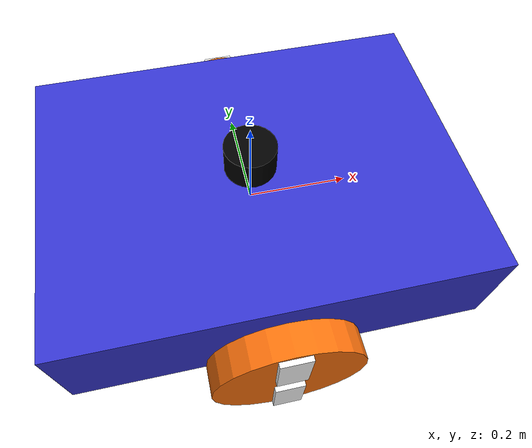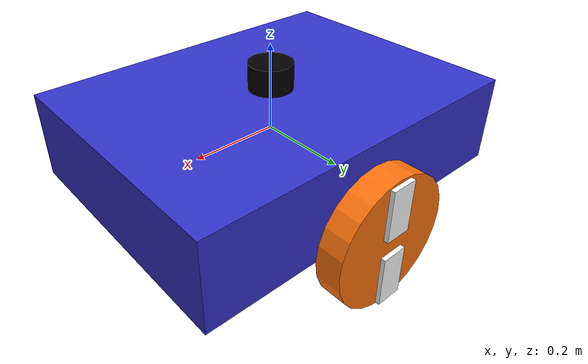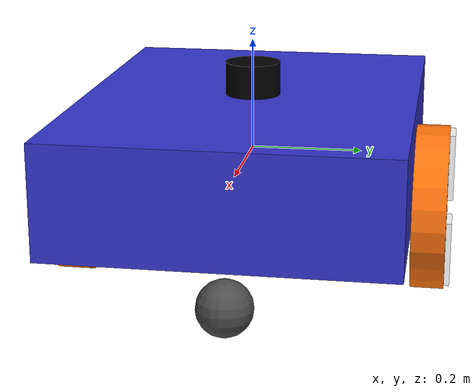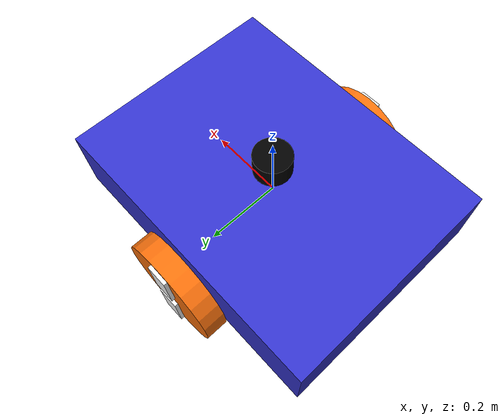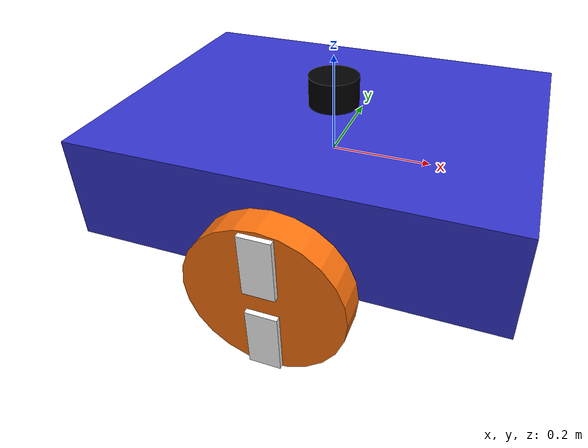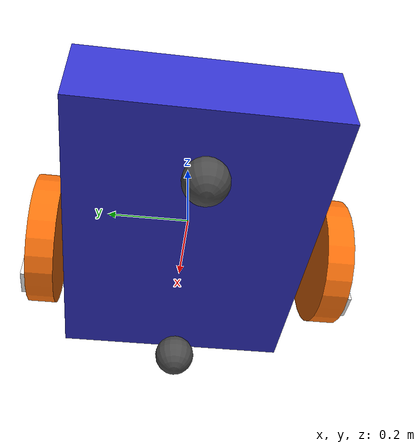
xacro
<?xml version="1.0"?>
<!-- xacro 命名空间声明，必须 -->
<robot xmlns:xacro="http://www.ros.org/wiki/xacro" name="my_robot">

  <!-- ========== ① 参数区：所有尺寸集中这里，改一处全局生效 ========== -->
  <xacro:property name="wheel_radius"     value="0.15"/>   <!-- 轮半径 m -->
  <xacro:property name="wheel_separation" value="0.70"/>   <!-- 左右轮距 m（DiffDrive 也要用） -->
  <xacro:property name="wheel_width"      value="0.06"/>
  <xacro:property name="chassis_len"      value="0.80"/>
  <xacro:property name="chassis_wid"      value="0.60"/>
  <xacro:property name="chassis_hei"      value="0.20"/>
  <xacro:property name="caster_radius"    value="0.05"/>
  <xacro:property name="chassis_mass"     value="20.0"/>
  <xacro:property name="wheel_mass"       value="2.0"/>

  <!-- ========== ② 车体 base_link（ROS 惯例：车体中心 = base_link）========== -->
  <!-- base_link 原点定在车体几何中心，离地 0.25m（轮心 0.15 + 上移 0.10） -->
  <link name="base_link">
    <visual>
      <geometry>
        <box size="${chassis_len} ${chassis_wid} ${chassis_hei}"/>
      </geometry>
      <material name="blue"><color rgba="0.2 0.2 0.8 1"/></material>
    </visual>
    <collision>
      <geometry>
        <box size="${chassis_len} ${chassis_wid} ${chassis_hei}"/>
      </geometry>
    </collision>
    <!-- 惯量用 box 公式 I=m(b²+c²)/12 直接算出来，Gazebo 物理仿真必须有 -->
    <inertial>
      <mass value="${chassis_mass}"/>
      <inertia ixx="${chassis_mass*(chassis_wid**2+chassis_hei**2)/12}" ixy="0" ixz="0"
               iyy="${chassis_mass*(chassis_len**2+chassis_hei**2)/12}" iyz="0"
               izz="${chassis_mass*(chassis_len**2+chassis_wid**2)/12}"/>
    </inertial>
  </link>

  <!-- ========== ③ 轮子宏：定义一次，左右各调用一次 ========== -->
  <!-- y_off: 左轮 +，右轮 -；prefix: left/right；side: 左 +1 / 右 -1（标记条镜像用） -->
  <xacro:macro name="wheel" params="prefix y_off side">
    <link name="${prefix}_wheel">
      <visual>
        <!-- 关键！URDF 圆柱默认轴向是 Z，绕 X 转 90° 后轴向变 Y（左右方向），轮子才能滚 -->
        <origin rpy="${pi/2} 0 0"/>
        <geometry>
          <cylinder radius="${wheel_radius}" length="${wheel_width}"/>
        </geometry>
        <!-- 轮胎主体换成亮橙色：纯黑圆柱在深色背景里看不清 -->
        <material name="orange"><color rgba="1.0 0.45 0.05 1"/></material>
      </visual>
      <visual>
        <origin xyz="0 ${side*(wheel_width/2 + 0.005)} ${wheel_radius*0.55}"/>
        <geometry>
          <box size="0.06 0.01 0.12"/>
        </geometry>
        <material name="wheel_mark_a"><color rgba="1 1 1 1"/></material>
      </visual>
      <!-- 标记条②：对面一条，转动时两条交替扫过，更明显 -->
      <visual>
        <origin xyz="0 ${side*(wheel_width/2 + 0.005)} ${-wheel_radius*0.55}"/>
        <geometry>
          <box size="0.06 0.01 0.12"/>
        </geometry>
        <material name="wheel_mark_b"><color rgba="1 1 1 1"/></material>
      </visual>
      <collision>
        <origin rpy="${pi/2} 0 0"/>
        <geometry>
          <cylinder radius="${wheel_radius}" length="${wheel_width}"/>
        </geometry>
      </collision>
      <inertial>
        <mass value="${wheel_mass}"/>
        <!-- 圆柱惯量公式：Ixx=Iyy=m(3r²+h²)/12，Izz=mr²/2 -->
        <inertia ixx="${wheel_mass*(3*wheel_radius**2+wheel_width**2)/12}" ixy="0" ixz="0"
                 iyy="${wheel_mass*(3*wheel_radius**2+wheel_width**2)/12}" iyz="0"
                 izz="${wheel_mass*wheel_radius**2/2}"/>
      </inertial>
    </link>

    <!-- continuous = 无限旋转（轮子没有转角限制，用 revolute 要写巨大 limit，不优雅） -->
    <joint name="${prefix}_wheel_joint" type="continuous">
      <parent link="base_link"/>
      <child link="${prefix}_wheel"/>
      <!-- 轮心相对 base_link：y = ±(半车宽+半轮宽)，z = -0.10（0.15轮心-0.25车心） -->
      <origin xyz="0 ${y_off} -0.10" rpy="0 0 0"/>
      <axis xyz="0 1 0"/>   <!-- 旋转轴 = 车体 Y 轴（与 Day4 SDF 同一个知识点） -->
      <limit effort="10" velocity="10"/>
    </joint>
  </xacro:macro>

  <xacro:wheel prefix="left"  y_off="${chassis_wid/2 + wheel_width/2}"  side="1"/>
  <xacro:wheel prefix="right" y_off="${-(chassis_wid/2 + wheel_width/2)}" side="-1"/>

  <!-- ========== ④ 前后万向球：三点支撑保持水平（Day4 的教训）========== -->
  <xacro:macro name="caster" params="prefix x_off">
    <link name="${prefix}_caster">
      <visual>
        <geometry><sphere radius="${caster_radius}"/></geometry>
        <material name="gray"><color rgba="0.3 0.3 0.3 1"/></material>
      </visual>
      <collision>
        <geometry><sphere radius="${caster_radius}"/></geometry>
      </collision>
      <inertial>
        <mass value="1.0"/>
        <inertia ixx="0.001" ixy="0" ixz="0" iyy="0.001" iyz="0" izz="0.001"/>
      </inertial>
    </link>
    <!-- 焊死在车体上（fixed）；摩擦在下面 gazebo 标签里设为 0 -->
    <joint name="${prefix}_caster_joint" type="fixed">
      <parent link="base_link"/>
      <child link="${prefix}_caster"/>
      <origin xyz="${x_off} 0 -0.20" rpy="0 0 0"/>  <!-- -0.20 = 0.05球心离地 - 0.25车心 -->
    </joint>
  </xacro:macro>

  <xacro:caster prefix="front" x_off="0.30"/>
  <xacro:caster prefix="rear"  x_off="-0.30"/>

  <!-- ========== ⑤ 激光雷达：车顶中央，Day9 state_query 的数据源 ========== -->
  <link name="lidar_link">
    <visual>
      <geometry><cylinder radius="0.05" length="0.06"/></geometry>
      <material name="dark"><color rgba="0 0 0 1"/></material>
    </visual>
    <inertial>
      <mass value="0.5"/>
      <inertia ixx="0.001" ixy="0" ixz="0" iyy="0.001" iyz="0" izz="0.001"/>
    </inertial>
  </link>

  <joint name="lidar_joint" type="fixed">
    <parent link="base_link"/>
    <child link="lidar_link"/>
    <origin xyz="0 0 0.13" rpy="0 0 0"/>   <!-- 车顶上方：0.35车顶 + 0.03半高 - 0.25 = 0.13 -->
  </joint>

  <!-- ========== ⑥ gazebo 标签：URDF 里嵌 Gazebo 专属配置 ========== -->

  <!-- 传感器挂在哪个 link 上，reference 就写谁 -->
  <gazebo reference="lidar_link">
    <sensor name="lidar" type="gpu_lidar">
      <update_rate>10</update_rate>
      <topic>/scan</topic>                    <!-- 这次直接用社区惯例名 /scan -->
      <gz_frame_id>lidar_link</gz_frame_id>   <!-- 必须与 URDF link 名一致！Day4 的坑 -->
      <lidar>
        <scan>
          <horizontal>
            <samples>360</samples>
            <resolution>1</resolution>
            <min_angle>-3.14159</min_angle>
            <max_angle>3.14159</max_angle>
          </horizontal>
        </scan>
        <range>
          <min>0.12</min>
          <max>12.0</max>
          <resolution>0.01</resolution>
        </range>
      </lidar>
      <always_on>true</always_on>
      <visualize>true</visualize>
    </sensor>
  </gazebo>

  <!-- 万向球零摩擦：否则转弯时和驱动轮打架（Day4 的教训） -->
  <gazebo reference="front_caster"><mu1>0.0</mu1><mu2>0.0</mu2></gazebo>
  <gazebo reference="rear_caster"><mu1>0.0</mu1><mu2>0.0</mu2></gazebo>

  <!-- Gazebo 里车体/轮子的显示颜色（URDF 的 color rgba Gazebo 不认，要用它自己的材质名） -->
  <gazebo reference="base_link"><material>Gazebo/Blue</material></gazebo>
  <gazebo reference="left_wheel"><material>Gazebo/Orange</material></gazebo>
  <gazebo reference="right_wheel"><material>Gazebo/Orange</material></gazebo>

  <!-- 差速驱动插件：模型级配置（不带 reference） -->
  <!-- Fortress 插件名是 ignition-*，写成 gz-* 会报 couldn't find shared library（Day4 坑3） -->
  <gazebo>
    <plugin filename="ignition-gazebo-diff-drive-system"
            name="ignition::gazebo::systems::DiffDrive">
      <left_joint>left_wheel_joint</left_joint>
      <right_joint>right_wheel_joint</right_joint>
      <wheel_separation>${wheel_separation}</wheel_separation>   <!-- 与上面轮距参数同一个变量！ -->
      <wheel_radius>${wheel_radius}</wheel_radius>               <!-- 同一个轮半径变量！ -->
      <odom_publish_frequency>30</odom_publish_frequency>
      <topic>/cmd_vel</topic>                                    <!-- 直接订阅标准话题名，省一次 remap -->
    </plugin>

    <!-- 轮子转角上报 → 桥到 /joint_states → robot_state_publisher → rviz 轮子会转 -->
    <plugin filename="ignition-gazebo-joint-state-publisher-system"
            name="ignition::gazebo::systems::JointStatePublisher"/>
  </gazebo>

</robot>
